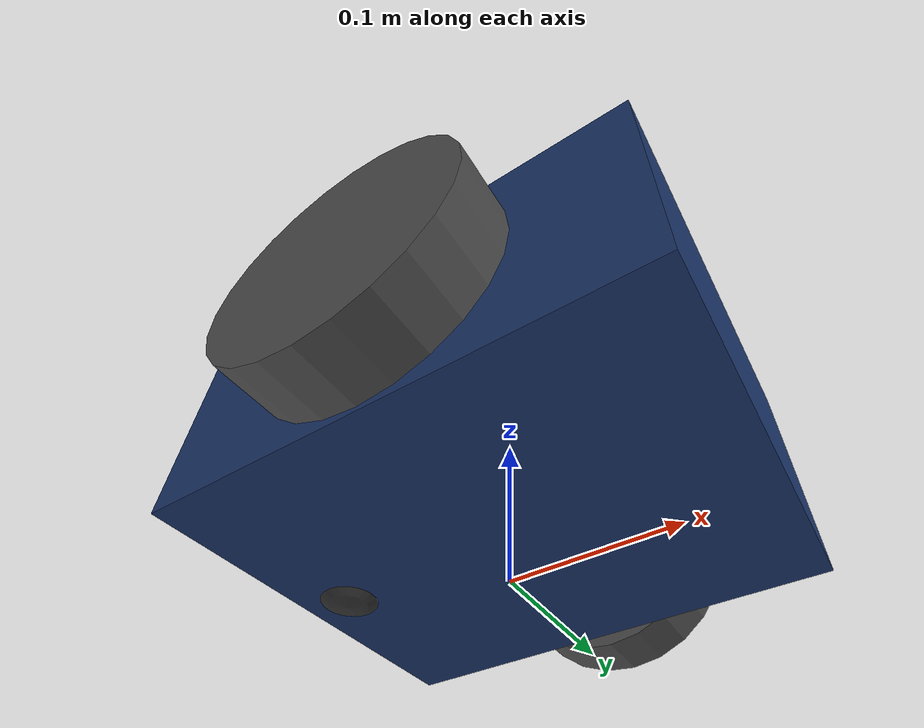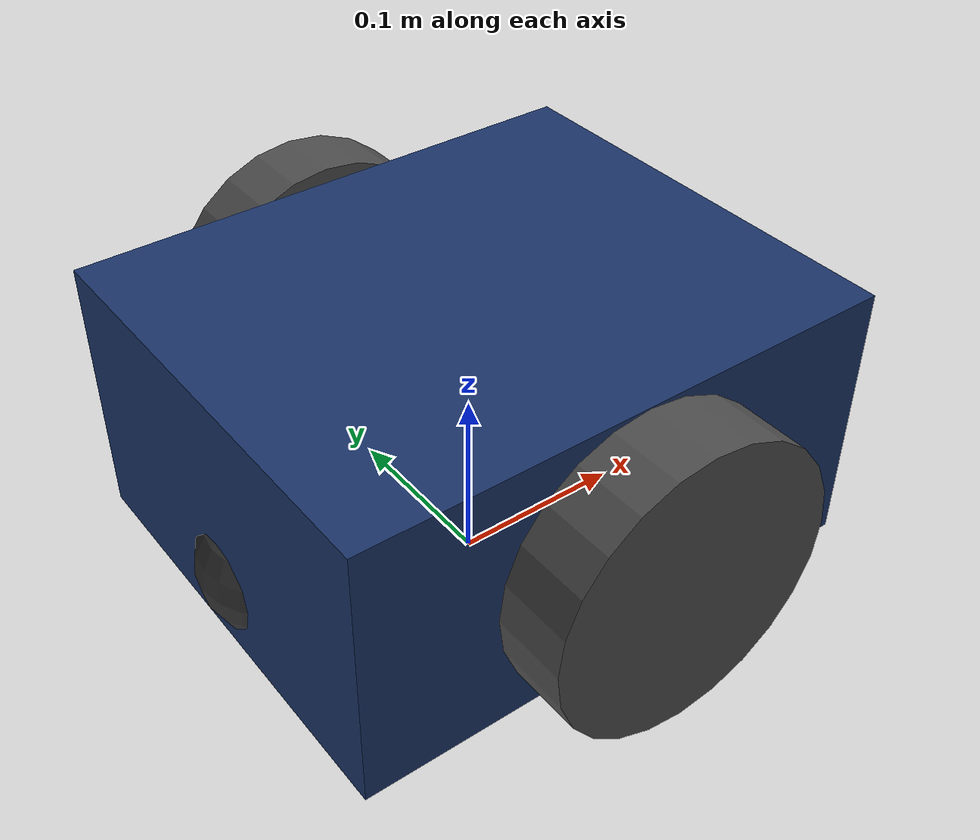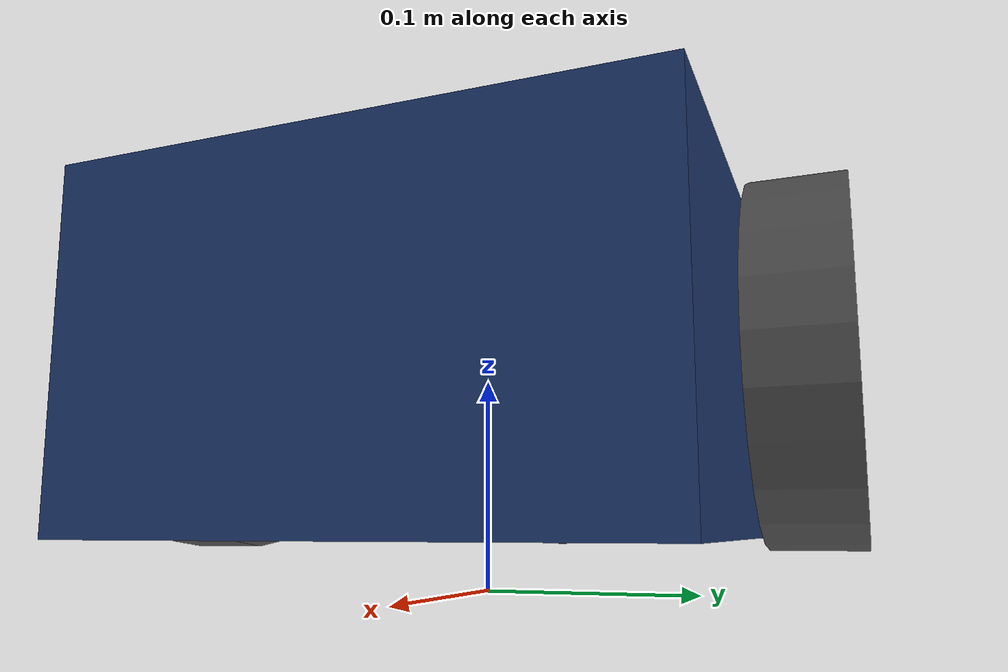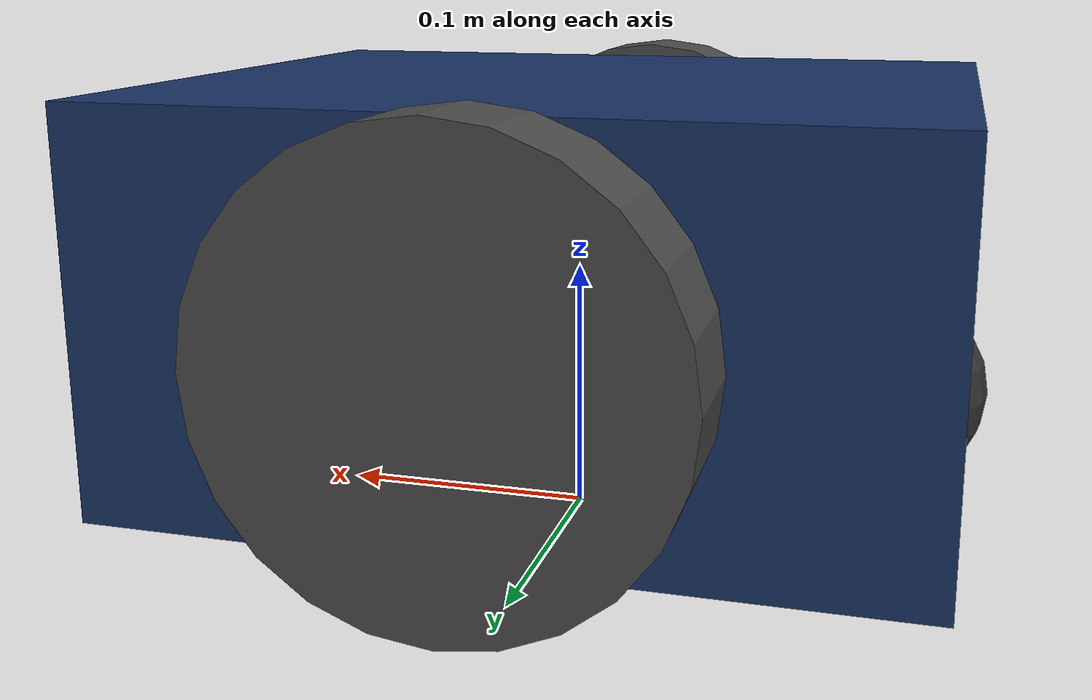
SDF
<?xml version="1.0"?>
<sdf version="1.9">
  <model name="coven_rover">
    <pose>0 0 0.1 0 0 0</pose>

    <!-- Chassis -->
    <link name="base_link">
      <inertial>
        <mass>4.0</mass>
        <inertia>
          <ixx>0.05</ixx><ixy>0</ixy><ixz>0</ixz>
          <iyy>0.05</iyy><iyz>0</iyz>
          <izz>0.08</izz>
        </inertia>
      </inertial>

      <collision name="chassis_collision">
        <geometry>
          <box><size>0.30 0.25 0.15</size></box>
        </geometry>
      </collision>

      <visual name="chassis_visual">
        <geometry>
          <box><size>0.30 0.25 0.15</size></box>
        </geometry>
        <material>
          <ambient>0.1 0.1 0.3 1</ambient>
          <diffuse>0.1 0.2 0.4 1</diffuse>
          <specular>0.5 0.5 0.5 1</specular>
        </material>
      </visual>

      <!-- 2D LIDAR sensor -->
      <!-- gpu_lidar required for LaserScan message type compatibility with ros_gz_bridge -->
      <sensor name="lidar" type="gpu_lidar">
        <pose>0.12 0 0.08 0 0 0</pose>
        <update_rate>10</update_rate>
        <gz_frame_id>base_link</gz_frame_id>
        <lidar>
          <scan>
            <horizontal>
              <samples>360</samples>
              <resolution>1</resolution>
              <min_angle>-3.14159</min_angle>
              <max_angle>3.14159</max_angle>
            </horizontal>
          </scan>
          <range>
            <min>0.1</min>
            <max>12.0</max>
            <resolution>0.01</resolution>
          </range>
          <noise>
            <type>gaussian</type>
            <mean>0</mean>
            <stddev>0.01</stddev>
          </noise>
        </lidar>
        <visualize>true</visualize>
        <always_on>true</always_on>
      </sensor>

      <!-- IMU sensor -->
      <!-- Topic omitted to use model-namespaced default. Frame explicitly set. -->
      <sensor name="imu" type="imu">
        <pose>0 0 0 0 0 0</pose>
        <update_rate>100</update_rate>
        <always_on>true</always_on>
        <gz_frame_id>base_link</gz_frame_id>
        <imu>
          <angular_velocity>
            <x><noise type="gaussian"><mean>0</mean><stddev>0.0001</stddev></noise></x>
            <y><noise type="gaussian"><mean>0</mean><stddev>0.0001</stddev></noise></y>
            <z><noise type="gaussian"><mean>0</mean><stddev>0.0001</stddev></noise></z>
          </angular_velocity>
          <linear_acceleration>
            <x><noise type="gaussian"><mean>0</mean><stddev>0.001</stddev></noise></x>
            <y><noise type="gaussian"><mean>0</mean><stddev>0.001</stddev></noise></y>
            <z><noise type="gaussian"><mean>0</mean><stddev>0.001</stddev></noise></z>
          </linear_acceleration>
        </imu>
      </sensor>
    </link>

    <!-- Left Wheel -->
    <link name="left_wheel">
      <pose>0 0.15 0 -1.5707 0 0</pose>
      <inertial>
        <mass>0.5</mass>
        <inertia>
          <ixx>0.001</ixx><ixy>0</ixy><ixz>0</ixz>
          <iyy>0.001</iyy><iyz>0</iyz>
          <izz>0.002</izz>
        </inertia>
      </inertial>

      <collision name="collision">
        <geometry>
          <cylinder>
            <radius>0.08</radius>
            <length>0.04</length>
          </cylinder>
        </geometry>
        <surface>
          <friction>
            <ode>
              <mu>1.0</mu>
              <mu2>1.0</mu2>
            </ode>
          </friction>
        </surface>
      </collision>

      <visual name="visual">
        <geometry>
          <cylinder>
            <radius>0.08</radius>
            <length>0.04</length>
          </cylinder>
        </geometry>
        <material>
          <ambient>0.2 0.2 0.2 1</ambient>
          <diffuse>0.3 0.3 0.3 1</diffuse>
        </material>
      </visual>
    </link>

    <!-- Right Wheel -->
    <link name="right_wheel">
      <pose>0 -0.15 0 -1.5707 0 0</pose>
      <inertial>
        <mass>0.5</mass>
        <inertia>
          <ixx>0.001</ixx><ixy>0</ixy><ixz>0</ixz>
          <iyy>0.001</iyy><iyz>0</iyz>
          <izz>0.002</izz>
        </inertia>
      </inertial>

      <collision name="collision">
        <geometry>
          <cylinder>
            <radius>0.08</radius>
            <length>0.04</length>
          </cylinder>
        </geometry>
        <surface>
          <friction>
            <ode>
              <mu>1.0</mu>
              <mu2>1.0</mu2>
            </ode>
          </friction>
        </surface>
      </collision>

      <visual name="visual">
        <geometry>
          <cylinder>
            <radius>0.08</radius>
            <length>0.04</length>
          </cylinder>
        </geometry>
        <material>
          <ambient>0.2 0.2 0.2 1</ambient>
          <diffuse>0.3 0.3 0.3 1</diffuse>
        </material>
      </visual>
    </link>

    <!-- Caster (rear support) -->
    <link name="caster">
      <pose>-0.12 0 -0.04 0 0 0</pose>
      <inertial>
        <mass>0.1</mass>
        <inertia>
          <ixx>0.0001</ixx><ixy>0</ixy><ixz>0</ixz>
          <iyy>0.0001</iyy><iyz>0</iyz>
          <izz>0.0001</izz>
        </inertia>
      </inertial>

      <collision name="collision">
        <geometry>
          <sphere><radius>0.04</radius></sphere>
        </geometry>
        <surface>
          <friction>
            <ode>
              <mu>0.0</mu>
              <mu2>0.0</mu2>
            </ode>
          </friction>
        </surface>
      </collision>

      <visual name="visual">
        <geometry>
          <sphere><radius>0.04</radius></sphere>
        </geometry>
        <material>
          <ambient>0.1 0.1 0.1 1</ambient>
          <diffuse>0.2 0.2 0.2 1</diffuse>
        </material>
      </visual>
    </link>

    <!-- Joints -->
    <joint name="left_wheel_joint" type="revolute">
      <parent>base_link</parent>
      <child>left_wheel</child>
      <axis>
        <xyz>0 0 1</xyz>
        <limit>
          <effort>10</effort>
          <velocity>10</velocity>
        </limit>
      </axis>
    </joint>

    <joint name="right_wheel_joint" type="revolute">
      <parent>base_link</parent>
      <child>right_wheel</child>
      <axis>
        <xyz>0 0 1</xyz>
        <limit>
          <effort>10</effort>
          <velocity>10</velocity>
        </limit>
      </axis>
    </joint>

    <joint name="caster_joint" type="ball">
      <parent>base_link</parent>
      <child>caster</child>
    </joint>

    <!-- Diff Drive Plugin -->
    <plugin filename="gz-sim-diff-drive-system" name="gz::sim::systems::DiffDrive">
      <left_joint>left_wheel_joint</left_joint>
      <right_joint>right_wheel_joint</right_joint>
      <wheel_separation>0.30</wheel_separation>
      <wheel_radius>0.08</wheel_radius>
      <max_linear_acceleration>1.0</max_linear_acceleration>
      <min_linear_acceleration>-1.0</min_linear_acceleration>
      <max_angular_acceleration>2.0</max_angular_acceleration>
      <min_angular_acceleration>-2.0</min_angular_acceleration>
      <odom_publish_frequency>50</odom_publish_frequency>
      <frame_id>odom</frame_id>
      <child_frame_id>base_link</child_frame_id>
    </plugin>

    <!-- Joint State Publisher -->
    <!-- Note: topic omitted to use default /world/{world}/model/{model}/joint_state -->
    <plugin filename="gz-sim-joint-state-publisher-system" name="gz::sim::systems::JointStatePublisher">
      <joint_name>left_wheel_joint</joint_name>
      <joint_name>right_wheel_joint</joint_name>
    </plugin>

  </model>
</sdf>
